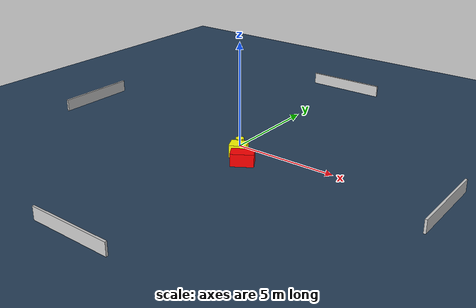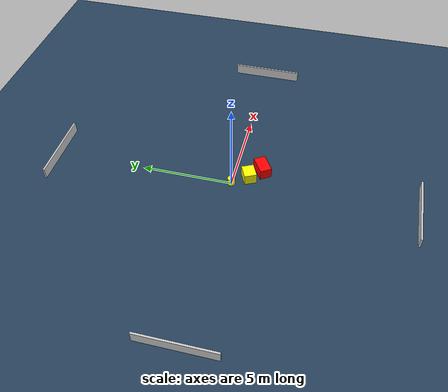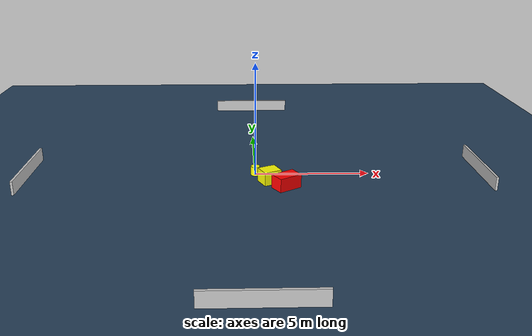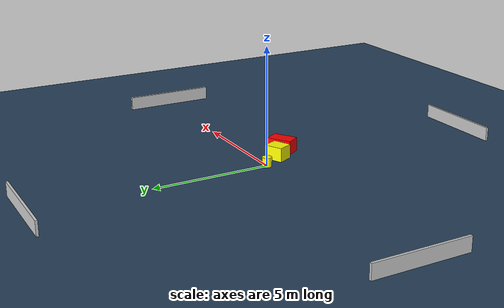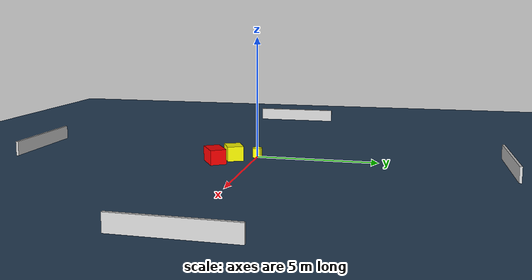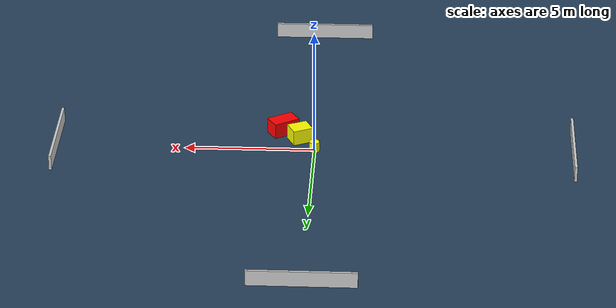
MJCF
<?xml version="1.0" ?>
<mujoco model="generated_environment">
  <option timestep="0.01" integrator="RK4" cone="elliptic"/>
  <default>
    <geom density="1"/>
  </default>
  <asset>
    <texture builtin="gradient" height="3072" name="skybox" rgb1="0.3 0.5 0.7" rgb2="0 0 0" type="skybox" width="512"/>
    <texture builtin="checker" height="300" name="groundplane" rgb1="0.2 0.3 0.4" rgb2="0.1 0.2 0.3" type="2d" width="300"/>
    <material name="groundplane" reflectance="0.2" texrepeat="5 5" texture="groundplane"/>
  </asset>
  <worldbody>
    <light dir="0 0 -1" directional="true" pos="0 0 1.5"/>
    <geom condim="3" friction="0.5 0.005 0.001" material="groundplane" name="floor" pos="0 0 0" size="0 0 0.05" type="plane"/>
    <body name="walls">
      <geom name="wall_1" condim="4" pos="-10.0 0.0 0.3" rgba="0.800000011920929 0.800000011920929 0.800000011920929 1.0" size="0.05 2.0 0.3" type="box"/>
      <geom name="wall_2" condim="4" pos="10.0 0.0 0.3" rgba="0.800000011920929 0.800000011920929 0.800000011920929 1.0" size="0.05 2.0 0.3" type="box"/>
      <geom name="wall_3" condim="4" pos="0.0 -10.0 0.3" rgba="0.800000011920929 0.800000011920929 0.800000011920929 1.0" size="2.0 0.05 0.3" type="box"/>
      <geom name="wall_4" condim="4" pos="0.0 10.0 0.3" rgba="0.800000011920929 0.800000011920929 0.800000011920929 1.0" size="2.0 0.05 0.3" type="box"/>
    </body>
    <body name="robot">
      <joint name="joint_x" type="slide" pos="0 0 0" axis="1 0 0"/>
      <joint name="joint_y" type="slide" pos="0 0 0" axis="0 1 0"/>
      <geom name="robot" type="cylinder" pos="0.0 0.0 0.2" size="0.2 0.2 0.0" mass="5.0" friction="1.0 0.005 0.0001" condim="4" rgba="1.0 1.0 0.0 1.0"/>
    </body>
    <body name="obstacle_1_movable">
      <geom name="obstacle_1_movable" condim="4" pos="0.5939538085175483 -0.8480558435294742 0.3" euler="0 0 25.40764209953724" friction="0.0 0.005 0.001" rgba="1.0 1.0 0.0 1.0" size="0.39752593969305916 0.33691321387321893 0.3" type="box" mass="0.1"/>
      <joint type="free"/>
    </body>
    <body name="obstacle_2_static">
      <geom name="obstacle_2_static" condim="4" pos="1.2788551252607132 -1.4618076960953583 0.3" euler="0 0 32.140171649542985" friction="0.0 0.005 0.001" rgba="1.0 0.0 0.0 1.0" size="0.5304723014992749 0.3266418002275702 0.3" type="box"/>
    </body>
  </worldbody>
  <actuator>
    <motor name="actuator_x" joint="joint_x" gear="1" ctrlrange="-1 1"/>
    <motor name="actuator_y" joint="joint_y" gear="1" ctrlrange="-1 1"/>
  </actuator>
</mujoco>
